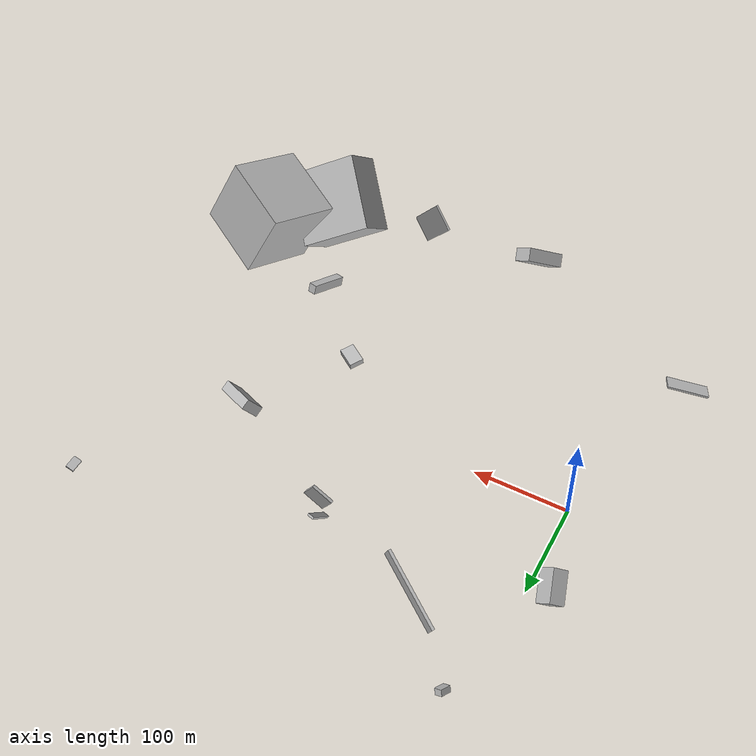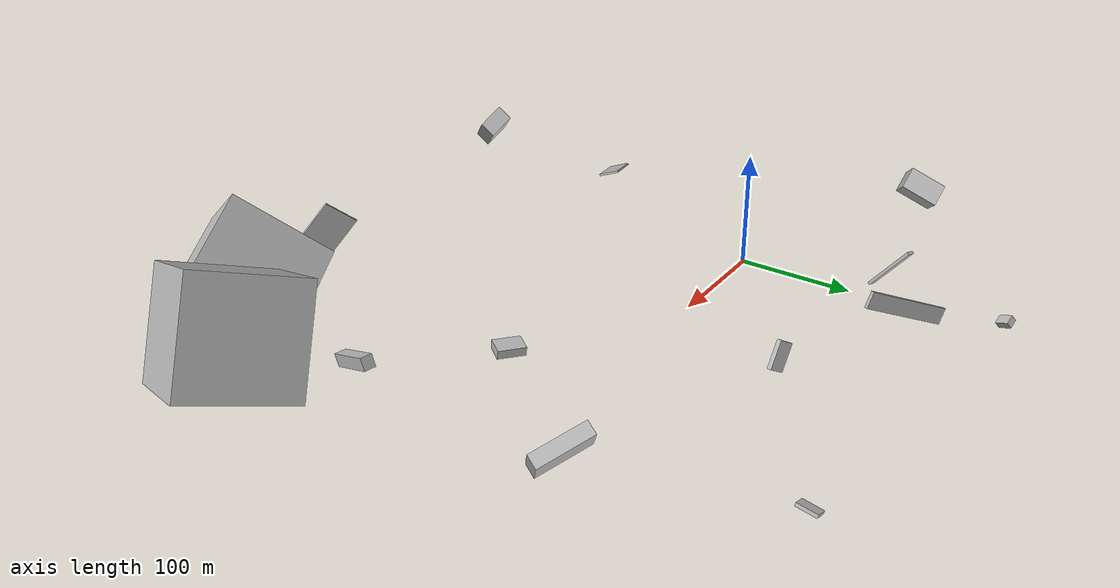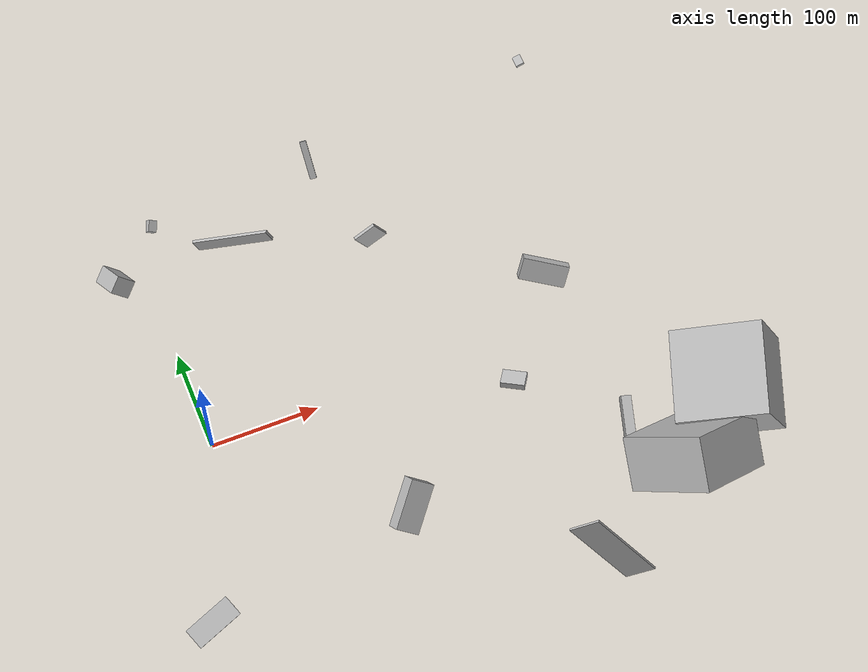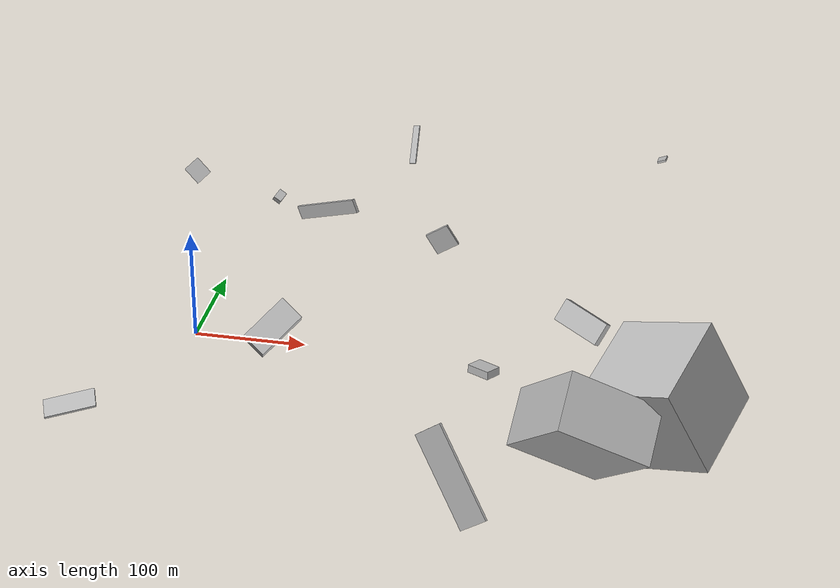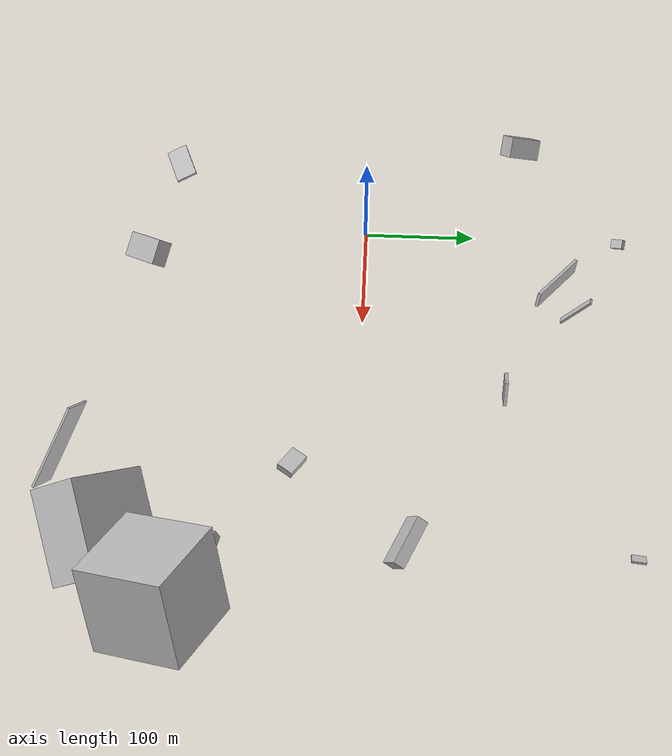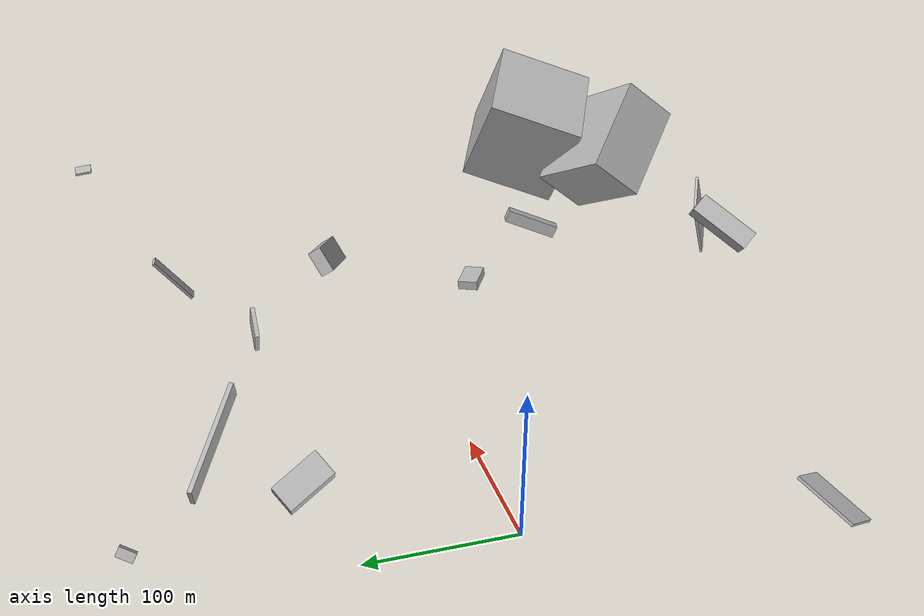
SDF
<sdf version="1.6">
 <world name="default">
  <scene>
   <sky><clouds><speed>12</speed></clouds></sky>
   <ambient>0.4 0.4 0.4 1</ambient>
   <background>0.7 0.7 0.7 1</background>
   <shadows>1</shadows>
  </scene>
  <gravity>0 0 -9.8066</gravity>
  <magnetic_field>6e-06 2.3e-05 -4.2e-05</magnetic_field>
  <physics default="0" name="default_physics" type="ode">
   <ode>
    <solver>
     <type>quick</type>
     <iters>10</iters>
     <sor>1.0</sor>
     <use_dynamic_moi_rescaling>0</use_dynamic_moi_rescaling>
    </solver>
    <constraints>
     <cfm>0</cfm>
     <erp>0.2</erp>
     <contact_max_correcting_vel>100</contact_max_correcting_vel>
     <contact_surface_layer>0.001</contact_surface_layer>
    </constraints>
   </ode>
   <max_step_size>0.004</max_step_size>
   <real_time_factor>1</real_time_factor>
   <real_time_update_rate>250</real_time_update_rate>
  </physics>
  <light name="sun" type="directional">
   <pose>0 0 10 0 0 0</pose>
   <diffuse>0.8 0.8 0.8 1</diffuse>
   <specular>0.2 0.2 0.2 1</specular>
   <attenuation>
    <range>1000</range>
    <constant>0.9</constant>
    <linear>0.01</linear>
    <quadratic>0.001</quadratic>
   </attenuation>
   <direction>-0.5 0.1 -0.9</direction>
  </light>
  <model name="building_1">
   <static>0</static>
   <pose>344.66992615343645 -130.33023594132723 26.589325198056976 0.04674930058938151 -0.3679085566709776 1.3047970284169161</pose>
   <link name="link">
    <gravity>0</gravity>
    <pose>0 0 5.0 0 0 0</pose>
    <collision name="collision"><geometry><box><size>43 9 10</size></box></geometry></collision>
    <visual name="visual">
     <cast_shadows>0</cast_shadows>
     <geometry><box><size>43 9 10</size></box></geometry>
     <material>
      <script>
       <uri>model://HANNAS_wall/materials/scripts</uri>
       <uri>model://HANNAS_wall/materials/textures</uri>
       <name>vrc/HANNAS_wall</name>
      </script>
     </material>
    </visual>
   </link>
  </model>
  <model name="building_2">
   <static>0</static>
   <pose>436.13308392255743 -118.97373449322083 99.1250087503407 1.9119167857812671 -0.33541418979788096 -0.4577115087059526</pose>
   <link name="link">
    <gravity>0</gravity>
    <pose>0 0 40.0 0 0 0</pose>
    <collision name="collision"><geometry><box><size>80 80 80</size></box></geometry></collision>
    <visual name="visual">
     <cast_shadows>0</cast_shadows>
     <geometry><box><size>80 80 80</size></box></geometry>
     <material>
      <script>
       <uri>model://HANNAS_wall/materials/scripts</uri>
       <uri>model://HANNAS_wall/materials/textures</uri>
       <name>vrc/HANNAS_wall</name>
      </script>
     </material>
    </visual>
   </link>
  </model>
  <model name="building_3">
   <static>0</static>
   <pose>-39.00137629834103 133.43474136046908 87.42914563634292 0.6641502709169355 -0.7691421844641326 2.955650764034645</pose>
   <link name="link">
    <gravity>0</gravity>
    <pose>0 0 8.0 0 0 0</pose>
    <collision name="collision"><geometry><box><size>18 30 16</size></box></geometry></collision>
    <visual name="visual">
     <cast_shadows>0</cast_shadows>
     <geometry><box><size>18 30 16</size></box></geometry>
     <material>
      <script>
       <uri>model://HANNAS_wall/materials/scripts</uri>
       <uri>model://HANNAS_wall/materials/textures</uri>
       <name>vrc/HANNAS_wall</name>
      </script>
     </material>
    </visual>
   </link>
  </model>
  <model name="building_4">
   <static>0</static>
   <pose>335.77592584185425 39.229590186338754 17.8307850268576 0.29725501937131565 0.5757900700447048 1.2752913856994406</pose>
   <link name="link">
    <gravity>0</gravity>
    <pose>0 0 10.5 0 0 0</pose>
    <collision name="collision"><geometry><box><size>11 44 21</size></box></geometry></collision>
    <visual name="visual">
     <cast_shadows>0</cast_shadows>
     <geometry><box><size>11 44 21</size></box></geometry>
     <material>
      <script>
       <uri>model://HANNAS_wall/materials/scripts</uri>
       <uri>model://HANNAS_wall/materials/textures</uri>
       <name>vrc/HANNAS_wall</name>
      </script>
     </material>
    </visual>
   </link>
  </model>
  <model name="building_5">
   <static>0</static>
   <pose>17.38011969714423 226.6911599988489 20.901211473906223 0.9276441827716058 0.8695253258924589 2.2263725325806796</pose>
   <link name="link">
    <gravity>0</gravity>
    <pose>0 0 5.5 0 0 0</pose>
    <collision name="collision"><geometry><box><size>6 8 11</size></box></geometry></collision>
    <visual name="visual">
     <cast_shadows>0</cast_shadows>
     <geometry><box><size>6 8 11</size></box></geometry>
     <material>
      <script>
       <uri>model://HANNAS_wall/materials/scripts</uri>
       <uri>model://HANNAS_wall/materials/textures</uri>
       <name>vrc/HANNAS_wall</name>
      </script>
     </material>
    </visual>
   </link>
  </model>
  <model name="building_6">
   <static>0</static>
   <pose>-74.523107471456 -181.45058972641087 26.48094349857903 -1.370514660756286 0.2862313082088426 -1.1913004590829297</pose>
   <link name="link">
    <gravity>0</gravity>
    <pose>0 0 21.5 0 0 0</pose>
    <collision name="collision"><geometry><box><size>19 2 43</size></box></geometry></collision>
    <visual name="visual">
     <cast_shadows>0</cast_shadows>
     <geometry><box><size>19 2 43</size></box></geometry>
     <material>
      <script>
       <uri>model://HANNAS_wall/materials/scripts</uri>
       <uri>model://HANNAS_wall/materials/textures</uri>
       <name>vrc/HANNAS_wall</name>
      </script>
     </material>
    </visual>
   </link>
  </model>
  <model name="building_7">
   <static>0</static>
   <pose>167.1843315490844 179.60794261797517 117.92717270389639 -1.8594994392060045 -0.8963670351950079 1.5885710720067783</pose>
   <link name="link">
    <gravity>0</gravity>
    <pose>0 0 3.0 0 0 0</pose>
    <collision name="collision"><geometry><box><size>36 2 6</size></box></geometry></collision>
    <visual name="visual">
     <cast_shadows>0</cast_shadows>
     <geometry><box><size>36 2 6</size></box></geometry>
     <material>
      <script>
       <uri>model://HANNAS_wall/materials/scripts</uri>
       <uri>model://HANNAS_wall/materials/textures</uri>
       <name>vrc/HANNAS_wall</name>
      </script>
     </material>
    </visual>
   </link>
  </model>
  <model name="building_8">
   <static>0</static>
   <pose>400.3417292965356 -193.79761272486118 64.39009538623743 0.9253551927900916 -0.6650849238609269 -0.8244268323949646</pose>
   <link name="link">
    <gravity>0</gravity>
    <pose>0 0 40.0 0 0 0</pose>
    <collision name="collision"><geometry><box><size>80 47 80</size></box></geometry></collision>
    <visual name="visual">
     <cast_shadows>0</cast_shadows>
     <geometry><box><size>80 47 80</size></box></geometry>
     <material>
      <script>
       <uri>model://HANNAS_wall/materials/scripts</uri>
       <uri>model://HANNAS_wall/materials/textures</uri>
       <name>vrc/HANNAS_wall</name>
      </script>
     </material>
    </visual>
   </link>
  </model>
  <model name="building_9">
   <static>0</static>
   <pose>273.9285077772058 -248.57182680172235 54.933385327409106 1.4348019858823675 -0.7100916847941895 -0.4597778730451278</pose>
   <link name="link">
    <gravity>0</gravity>
    <pose>0 0 1.0 0 0 0</pose>
    <collision name="collision"><geometry><box><size>30 80 2</size></box></geometry></collision>
    <visual name="visual">
     <cast_shadows>0</cast_shadows>
     <geometry><box><size>30 80 2</size></box></geometry>
     <material>
      <script>
       <uri>model://HANNAS_wall/materials/scripts</uri>
       <uri>model://HANNAS_wall/materials/textures</uri>
       <name>vrc/HANNAS_wall</name>
      </script>
     </material>
    </visual>
   </link>
  </model>
  <model name="building_10">
   <static>0</static>
   <pose>258.9758009677571 -48.77677637163921 28.10381651528229 0.814777756181198 -1.4449969434544636 1.7450975617168816</pose>
   <link name="link">
    <gravity>0</gravity>
    <pose>0 0 11.0 0 0 0</pose>
    <collision name="collision"><geometry><box><size>7 15 22</size></box></geometry></collision>
    <visual name="visual">
     <cast_shadows>0</cast_shadows>
     <geometry><box><size>7 15 22</size></box></geometry>
     <material>
      <script>
       <uri>model://HANNAS_wall/materials/scripts</uri>
       <uri>model://HANNAS_wall/materials/textures</uri>
       <name>vrc/HANNAS_wall</name>
      </script>
     </material>
    </visual>
   </link>
  </model>
  <model name="building_11">
   <static>0</static>
   <pose>387.0593408898511 225.11081906850927 100.99298868622172 0.3204116958049913 -1.1998941138304464 2.7817682320893113</pose>
   <link name="link">
    <gravity>0</gravity>
    <pose>0 0 4.0 0 0 0</pose>
    <collision name="collision"><geometry><box><size>2 12 8</size></box></geometry></collision>
    <visual name="visual">
     <cast_shadows>0</cast_shadows>
     <geometry><box><size>2 12 8</size></box></geometry>
     <material>
      <script>
       <uri>model://HANNAS_wall/materials/scripts</uri>
       <uri>model://HANNAS_wall/materials/textures</uri>
       <name>vrc/HANNAS_wall</name>
      </script>
     </material>
    </visual>
   </link>
  </model>
  <model name="building_12">
   <static>0</static>
   <pose>84.50344280173702 170.97344793950796 39.85054900676343 0.054723613135151714 -0.4123189857114852 -0.5316413051879677</pose>
   <link name="link">
    <gravity>0</gravity>
    <pose>0 0 6.5 0 0 0</pose>
    <collision name="collision"><geometry><box><size>79 3 13</size></box></geometry></collision>
    <visual name="visual">
     <cast_shadows>0</cast_shadows>
     <geometry><box><size>79 3 13</size></box></geometry>
     <material>
      <script>
       <uri>model://HANNAS_wall/materials/scripts</uri>
       <uri>model://HANNAS_wall/materials/textures</uri>
       <name>vrc/HANNAS_wall</name>
      </script>
     </material>
    </visual>
   </link>
  </model>
  <model name="building_13">
   <static>0</static>
   <pose>122.67111097526183 -187.05662992888998 132.15485155081578 2.491310944242264 -0.600663075302954 2.8047747527275013</pose>
   <link name="link">
    <gravity>0</gravity>
    <pose>0 0 6.5 0 0 0</pose>
    <collision name="collision"><geometry><box><size>21 42 13</size></box></geometry></collision>
    <visual name="visual">
     <cast_shadows>0</cast_shadows>
     <geometry><box><size>21 42 13</size></box></geometry>
     <material>
      <script>
       <uri>model://HANNAS_wall/materials/scripts</uri>
       <uri>model://HANNAS_wall/materials/textures</uri>
       <name>vrc/HANNAS_wall</name>
      </script>
     </material>
    </visual>
   </link>
  </model>
  <model name="building_14">
   <static>0</static>
   <pose>206.60191016064806 125.07580036162105 41.60666152917243 0.026944387255994972 0.5737952876672676 3.1225929938016335</pose>
   <link name="link">
    <gravity>0</gravity>
    <pose>0 0 10.5 0 0 0</pose>
    <collision name="collision"><geometry><box><size>23 3 21</size></box></geometry></collision>
    <visual name="visual">
     <cast_shadows>0</cast_shadows>
     <geometry><box><size>23 3 21</size></box></geometry>
     <material>
      <script>
       <uri>model://HANNAS_wall/materials/scripts</uri>
       <uri>model://HANNAS_wall/materials/textures</uri>
       <name>vrc/HANNAS_wall</name>
      </script>
     </material>
    </visual>
   </link>
  </model>
 </world>
</sdf>
